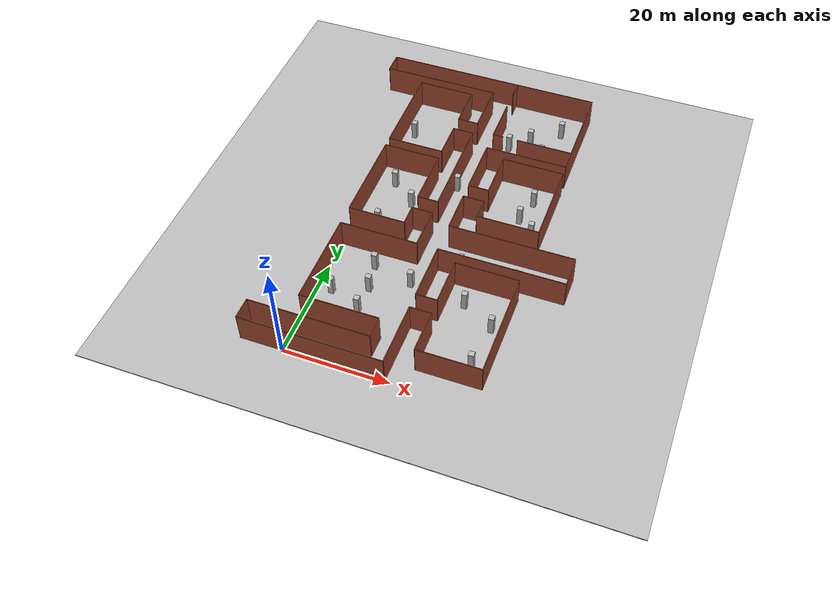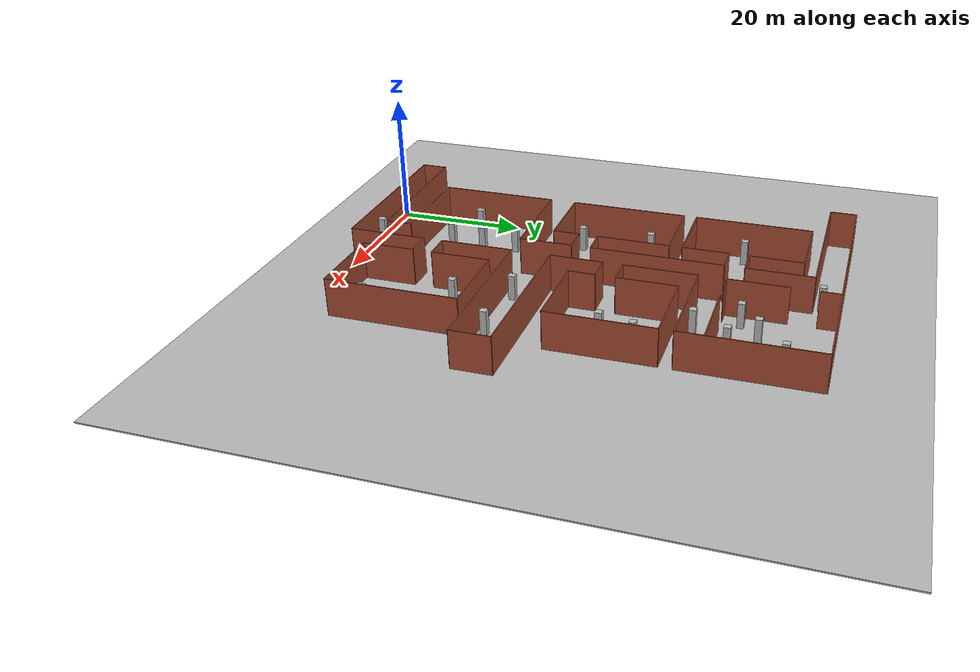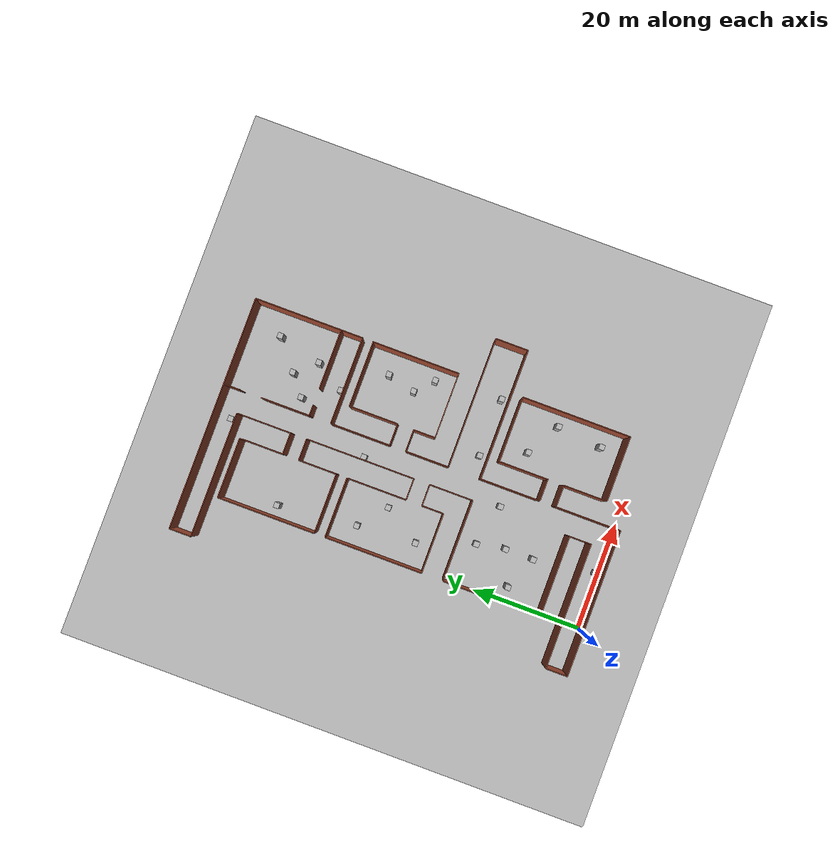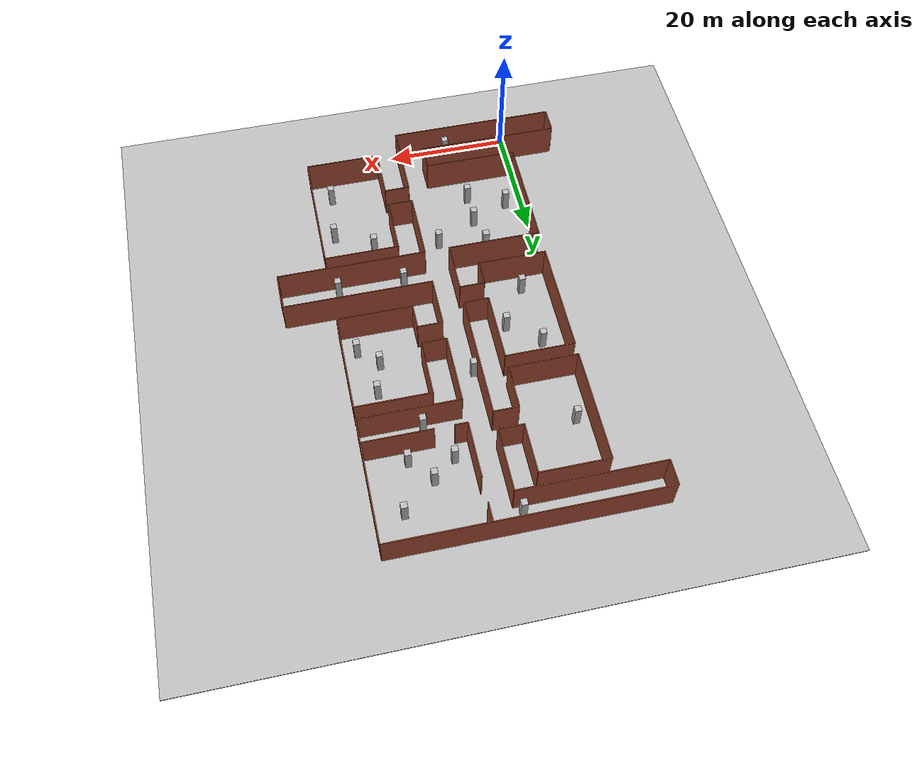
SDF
<sdf version="1.6">
 <world name="default">
  <light name="sun" type="directional">
   <pose>0 0 10 0 -0 0</pose>
   <diffuse>0.8 0.8 0.8 1</diffuse>
   <specular>0.2 0.2 0.2 1</specular>
   <attenuation>
    <range>1000</range>
    <constant>0.9</constant>
    <linear>0.01</linear>
    <quadratic>0.001</quadratic>
   </attenuation>
   <direction>-0.5 0.1 -0.9</direction>
   <spot><inner_angle>0</inner_angle><outer_angle>0</outer_angle><falloff>0</falloff></spot>
  </light>
  <spherical_coordinates>
   <surface_model>EARTH_WGS84</surface_model>
   <latitude_deg>0</latitude_deg>
   <longitude_deg>0</longitude_deg>
   <elevation>0</elevation>
   <heading_deg>0</heading_deg>
  </spherical_coordinates>
  <physics name="default_physics" default="0" type="ode">
   <ode>
    <solver>
     <type>quick</type>
     <iters>1000</iters>
     <sor>1.3</sor>
     <use_dynamic_moi_rescaling>0</use_dynamic_moi_rescaling>
    </solver>
    <constraints>
     <cfm>0</cfm>
     <erp>0.2</erp>
     <contact_max_correcting_vel>100</contact_max_correcting_vel>
     <contact_surface_layer>0.001</contact_surface_layer>
    </constraints>
   </ode>
   <max_step_size>0.01</max_step_size>
   <real_time_factor>1</real_time_factor>
   <real_time_update_rate>100</real_time_update_rate>
  </physics>
  <gravity>0 0 -9.8</gravity>
  <magnetic_field>6e-06 2.3e-05 -4.2e-05</magnetic_field>
  <atmosphere type="adiabatic"/>
  <scene><ambient>0.4 0.4 0.4 1</ambient><background>0.7 0.7 0.7 1</background><shadows>1</shadows></scene>
  <model name="HZI_Ground">
   <static>1</static>
   <link name="link">
    <collision name="collision"><geometry><box><size>100 100 0.2</size></box></geometry></collision>
    <visual name="visual">
     <cast_shadows>0</cast_shadows>
     <geometry><box><size>100 100 0.2</size></box></geometry>
     <material>
      <script>
       <uri>model://HZI_Ground/materials/scripts</uri>
       <uri>model://HZI_Ground/materials/textures</uri>
       <name>vrc/ground</name>
      </script>
     </material>
    </visual>
   </link>
   <pose>17 37 0 0 -0 0</pose>
  </model>
  <model name="HZI">
   <link name="Wall_0">
    <collision name="Wall_0_Collision">
     <pose>13.5 0 3 0 -0 0</pose>
     <geometry><box><size>27 0.15 6</size></box></geometry>
    </collision>
    <visual name="Wall_0_Visual">
     <pose>13.5 0 3 0 -0 0</pose>
     <geometry><box><size>27 0.15 6</size></box></geometry>
     <material>
      <script><uri>file://media/materials/scripts/gazebo.material</uri><name>Gazebo/Bricks</name></script>
      <ambient>1 1 1 1</ambient>
     </material>
     <meta><layer>0</layer></meta>
    </visual>
    <pose>-8 0 0 0 -0 0</pose>
   </link>
   <link name="Wall_1">
    <collision name="Wall_1_Collision">
     <pose>6 0 3 0 -0 0</pose>
     <geometry><box><size>12 0.15 6</size></box></geometry>
    </collision>
    <visual name="Wall_1_Visual">
     <pose>6 0 3 0 -0 0</pose>
     <geometry><box><size>12 0.15 6</size></box></geometry>
     <material>
      <script><uri>file://media/materials/scripts/gazebo.material</uri><name>Gazebo/Bricks</name></script>
      <ambient>1 1 1 1</ambient>
     </material>
     <meta><layer>0</layer></meta>
    </visual>
    <pose>19 0 0 0 -0 1.5708</pose>
   </link>
   <link name="Wall_2">
    <collision name="Wall_2_Collision">
     <pose>2 0 3 0 -0 0</pose>
     <geometry><box><size>4 0.15 6</size></box></geometry>
    </collision>
    <visual name="Wall_2_Visual">
     <pose>2 0 3 0 -0 0</pose>
     <geometry><box><size>4 0.15 6</size></box></geometry>
     <material>
      <script><uri>file://media/materials/scripts/gazebo.material</uri><name>Gazebo/Bricks</name></script>
      <ambient>1 1 1 1</ambient>
     </material>
     <meta><layer>0</layer></meta>
    </visual>
    <pose>19 12 0 0 -0 0</pose>
   </link>
   <link name="Wall_3">
    <collision name="Wall_3_Collision">
     <pose>4 0 3 0 -0 0</pose>
     <geometry><box><size>8 0.15 6</size></box></geometry>
    </collision>
    <visual name="Wall_3_Visual">
     <pose>4 0 3 0 -0 0</pose>
     <geometry><box><size>8 0.15 6</size></box></geometry>
     <material>
      <script><uri>file://media/materials/scripts/gazebo.material</uri><name>Gazebo/Bricks</name></script>
      <ambient>1 1 1 1</ambient>
     </material>
     <meta><layer>0</layer></meta>
    </visual>
    <pose>23 4 0 0 -0 1.5708</pose>
   </link>
   <link name="Wall_4">
    <collision name="Wall_4_Collision">
     <pose>6 0 3 0 -0 0</pose>
     <geometry><box><size>12 0.15 6</size></box></geometry>
    </collision>
    <visual name="Wall_4_Visual">
     <pose>6 0 3 0 -0 0</pose>
     <geometry><box><size>12 0.15 6</size></box></geometry>
     <material>
      <script><uri>file://media/materials/scripts/gazebo.material</uri><name>Gazebo/Bricks</name></script>
      <ambient>1 1 1 1</ambient>
     </material>
     <meta><layer>0</layer></meta>
    </visual>
    <pose>23 4 0 0 -0 0</pose>
   </link>
   <link name="Wall_5">
    <collision name="Wall_5_Collision">
     <pose>10 0 3 0 -0 0</pose>
     <geometry><box><size>20 0.15 6</size></box></geometry>
    </collision>
    <visual name="Wall_5_Visual">
     <pose>10 0 3 0 -0 0</pose>
     <geometry><box><size>20 0.15 6</size></box></geometry>
     <material>
      <script><uri>file://media/materials/scripts/gazebo.material</uri><name>Gazebo/Bricks</name></script>
      <ambient>1 1 1 1</ambient>
     </material>
     <meta><layer>0</layer></meta>
    </visual>
    <pose>35 4 0 0 -0 1.5708</pose>
   </link>
   <link name="Wall_6">
    <collision name="Wall_6_Collision">
     <pose>6 0 3 0 -0 0</pose>
     <geometry><box><size>12 0.15 6</size></box></geometry>
    </collision>
    <visual name="Wall_6_Visual">
     <pose>6 0 3 0 -0 0</pose>
     <geometry><box><size>12 0.15 6</size></box></geometry>
     <material>
      <script><uri>file://media/materials/scripts/gazebo.material</uri><name>Gazebo/Bricks</name></script>
      <ambient>1 1 1 1</ambient>
     </material>
     <meta><layer>0</layer></meta>
    </visual>
    <pose>23 24 0 0 -0 0</pose>
   </link>
   <link name="Wall_7">
    <collision name="Wall_7_Collision">
     <pose>4.5 0 3 0 -0 0</pose>
     <geometry><box><size>9 0.15 6</size></box></geometry>
    </collision>
    <visual name="Wall_7_Visual">
     <pose>4.5 0 3 0 -0 0</pose>
     <geometry><box><size>9 0.15 6</size></box></geometry>
     <material>
      <script><uri>file://media/materials/scripts/gazebo.material</uri><name>Gazebo/Bricks</name></script>
      <ambient>1 1 1 1</ambient>
     </material>
     <meta><layer>0</layer></meta>
    </visual>
    <pose>23 15 0 0 -0 1.5708</pose>
   </link>
   <link name="Wall_8">
    <collision name="Wall_8_Collision">
     <pose>2 0 3 0 -0 0</pose>
     <geometry><box><size>4 0.15 6</size></box></geometry>
    </collision>
    <visual name="Wall_8_Visual">
     <pose>2 0 3 0 -0 0</pose>
     <geometry><box><size>4 0.15 6</size></box></geometry>
     <material>
      <script><uri>file://media/materials/scripts/gazebo.material</uri><name>Gazebo/Bricks</name></script>
      <ambient>1 1 1 1</ambient>
     </material>
     <meta><layer>0</layer></meta>
    </visual>
    <pose>19 15 0 0 -0 0</pose>
   </link>
   <link name="Wall_9">
    <collision name="Wall_9_Collision">
     <pose>5.5 0 3 0 -0 0</pose>
     <geometry><box><size>11 0.15 6</size></box></geometry>
    </collision>
    <visual name="Wall_9_Visual">
     <pose>5.5 0 3 0 -0 0</pose>
     <geometry><box><size>11 0.15 6</size></box></geometry>
     <material>
      <script><uri>file://media/materials/scripts/gazebo.material</uri><name>Gazebo/Bricks</name></script>
      <ambient>1 1 1 1</ambient>
     </material>
     <meta><layer>0</layer></meta>
    </visual>
    <pose>19 15 0 0 -0 1.5708</pose>
   </link>
   <link name="Wall_10">
    <collision name="Wall_10_Collision">
     <pose>12 0 3 0 -0 0</pose>
     <geometry><box><size>24 0.15 6</size></box></geometry>
    </collision>
    <visual name="Wall_10_Visual">
     <pose>12 0 3 0 -0 0</pose>
     <geometry><box><size>24 0.15 6</size></box></geometry>
     <material>
      <script><uri>file://media/materials/scripts/gazebo.material</uri><name>Gazebo/Bricks</name></script>
      <ambient>1 1 1 1</ambient>
     </material>
     <meta><layer>0</layer></meta>
    </visual>
    <pose>19 26 0 0 -0 0</pose>
   </link>
   <link name="Wall_11">
    <collision name="Wall_11_Collision">
     <pose>3 0 3 0 -0 0</pose>
     <geometry><box><size>6 0.15 6</size></box></geometry>
    </collision>
    <visual name="Wall_11_Visual">
     <pose>3 0 3 0 -0 0</pose>
     <geometry><box><size>6 0.15 6</size></box></geometry>
     <material>
      <script><uri>file://media/materials/scripts/gazebo.material</uri><name>Gazebo/Bricks</name></script>
      <ambient>1 1 1 1</ambient>
     </material>
     <meta><layer>0</layer></meta>
    </visual>
    <pose>43 26 0 0 -0 1.5708</pose>
   </link>
   <link name="Wall_12">
    <collision name="Wall_12_Collision">
     <pose>12 0 3 0 -0 0</pose>
     <geometry><box><size>24 0.15 6</size></box></geometry>
    </collision>
    <visual name="Wall_12_Visual">
     <pose>12 0 3 0 -0 0</pose>
     <geometry><box><size>24 0.15 6</size></box></geometry>
     <material>
      <script><uri>file://media/materials/scripts/gazebo.material</uri><name>Gazebo/Bricks</name></script>
      <ambient>1 1 1 1</ambient>
     </material>
     <meta><layer>0</layer></meta>
    </visual>
    <pose>19 32 0 0 -0 0</pose>
   </link>
   <link name="Wall_13">
    <collision name="Wall_13_Collision">
     <pose>11.5 0 3 0 -0 0</pose>
     <geometry><box><size>23 0.15 6</size></box></geometry>
    </collision>
    <visual name="Wall_13_Visual">
     <pose>11.5 0 3 0 -0 0</pose>
     <geometry><box><size>23 0.15 6</size></box></geometry>
     <material>
      <script><uri>file://media/materials/scripts/gazebo.material</uri><name>Gazebo/Bricks</name></script>
      <ambient>1 1 1 1</ambient>
     </material>
     <meta><layer>0</layer></meta>
    </visual>
    <pose>-8 4 0 0 -0 0</pose>
   </link>
   <link name="Wall_14">
    <collision name="Wall_14_Collision">
     <pose>2 0 3 0 -0 0</pose>
     <geometry><box><size>4 0.15 6</size></box></geometry>
    </collision>
    <visual name="Wall_14_Visual">
     <pose>2 0 3 0 -0 0</pose>
     <geometry><box><size>4 0.15 6</size></box></geometry>
     <material>
      <script><uri>file://media/materials/scripts/gazebo.material</uri><name>Gazebo/Bricks</name></script>
      <ambient>1 1 1 1</ambient>
     </material>
     <meta><layer>0</layer></meta>
    </visual>
    <pose>15 4 0 0 -0 1.5708</pose>
   </link>
   <link name="Wall_15">
    <collision name="Wall_15_Collision">
     <pose>7.5 0 3 0 -0 0</pose>
     <geometry><box><size>15 0.15 6</size></box></geometry>
    </collision>
    <visual name="Wall_15_Visual">
     <pose>7.5 0 3 0 -0 0</pose>
     <geometry><box><size>15 0.15 6</size></box></geometry>
     <material>
      <script><uri>file://media/materials/scripts/gazebo.material</uri><name>Gazebo/Bricks</name></script>
      <ambient>1 1 1 1</ambient>
     </material>
     <meta><layer>0</layer></meta>
    </visual>
    <pose>0 8 0 0 -0 0</pose>
   </link>
   <link name="Wall_16">
    <collision name="Wall_16_Collision">
     <pose>2 0 3 0 -0 0</pose>
     <geometry><box><size>4 0.15 6</size></box></geometry>
    </collision>
    <visual name="Wall_16_Visual">
     <pose>2 0 3 0 -0 0</pose>
     <geometry><box><size>4 0.15 6</size></box></geometry>
     <material>
      <script><uri>file://media/materials/scripts/gazebo.material</uri><name>Gazebo/Bricks</name></script>
      <ambient>1 1 1 1</ambient>
     </material>
     <meta><layer>0</layer></meta>
    </visual>
    <pose>-8 0 0 0 -0 1.5708</pose>
   </link>
   <link name="Wall_17">
    <collision name="Wall_17_Collision">
     <pose>7.5 0 3 0 -0 0</pose>
     <geometry><box><size>15 0.15 6</size></box></geometry>
    </collision>
    <visual name="Wall_17_Visual">
     <pose>7.5 0 3 0 -0 0</pose>
     <geometry><box><size>15 0.15 6</size></box></geometry>
     <material>
      <script><uri>file://media/materials/scripts/gazebo.material</uri><name>Gazebo/Bricks</name></script>
      <ambient>1 1 1 1</ambient>
     </material>
     <meta><layer>0</layer></meta>
    </visual>
    <pose>0 26 0 0 -0 0</pose>
   </link>
   <link name="Wall_18">
    <collision name="Wall_18_Collision">
     <pose>9 0 3 0 -0 0</pose>
     <geometry><box><size>18 0.15 6</size></box></geometry>
    </collision>
    <visual name="Wall_18_Visual">
     <pose>9 0 3 0 -0 0</pose>
     <geometry><box><size>18 0.15 6</size></box></geometry>
     <material>
      <script><uri>file://media/materials/scripts/gazebo.material</uri><name>Gazebo/Bricks</name></script>
      <ambient>1 1 1 1</ambient>
     </material>
     <meta><layer>0</layer></meta>
    </visual>
    <pose>0 8 0 0 -0 1.5708</pose>
   </link>
   <link name="Wall_19">
    <collision name="Wall_19_Collision">
     <pose>5.5 0 3 0 -0 0</pose>
     <geometry><box><size>11 0.15 6</size></box></geometry>
    </collision>
    <visual name="Wall_19_Visual">
     <pose>5.5 0 3 0 -0 0</pose>
     <geometry><box><size>11 0.15 6</size></box></geometry>
     <material>
      <script><uri>file://media/materials/scripts/gazebo.material</uri><name>Gazebo/Bricks</name></script>
      <ambient>1 1 1 1</ambient>
     </material>
     <meta><layer>0</layer></meta>
    </visual>
    <pose>0 30 0 0 -0 0</pose>
   </link>
   <link name="Wall_20">
    <collision name="Wall_20_Collision">
     <pose>2 0 3 0 -0 0</pose>
     <geometry><box><size>4 0.15 6</size></box></geometry>
    </collision>
    <visual name="Wall_20_Visual">
     <pose>2 0 3 0 -0 0</pose>
     <geometry><box><size>4 0.15 6</size></box></geometry>
     <material>
      <script><uri>file://media/materials/scripts/gazebo.material</uri><name>Gazebo/Bricks</name></script>
      <ambient>1 1 1 1</ambient>
     </material>
     <meta><layer>0</layer></meta>
    </visual>
    <pose>11 30 0 0 -0 1.5708</pose>
   </link>
   <link name="Wall_21">
    <collision name="Wall_21_Collision">
     <pose>2 0 3 0 -0 0</pose>
     <geometry><box><size>4 0.15 6</size></box></geometry>
    </collision>
    <visual name="Wall_21_Visual">
     <pose>2 0 3 0 -0 0</pose>
     <geometry><box><size>4 0.15 6</size></box></geometry>
     <material>
      <script><uri>file://media/materials/scripts/gazebo.material</uri><name>Gazebo/Bricks</name></script>
      <ambient>1 1 1 1</ambient>
     </material>
     <meta><layer>0</layer></meta>
    </visual>
    <pose>11 34 0 0 -0 0</pose>
   </link>
   <link name="Wall_22">
    <collision name="Wall_22_Collision">
     <pose>4 0 3 0 -0 0</pose>
     <geometry><box><size>8 0.15 6</size></box></geometry>
    </collision>
    <visual name="Wall_22_Visual">
     <pose>4 0 3 0 -0 0</pose>
     <geometry><box><size>8 0.15 6</size></box></geometry>
     <material>
      <script><uri>file://media/materials/scripts/gazebo.material</uri><name>Gazebo/Bricks</name></script>
      <ambient>1 1 1 1</ambient>
     </material>
     <meta><layer>0</layer></meta>
    </visual>
    <pose>15 26 0 0 -0 1.5708</pose>
   </link>
   <link name="Wall_23">
    <collision name="Wall_23_Collision">
     <pose>9 0 3 0 -0 0</pose>
     <geometry><box><size>18 0.15 6</size></box></geometry>
    </collision>
    <visual name="Wall_23_Visual">
     <pose>9 0 3 0 -0 0</pose>
     <geometry><box><size>18 0.15 6</size></box></geometry>
     <material>
      <script><uri>file://media/materials/scripts/gazebo.material</uri><name>Gazebo/Bricks</name></script>
      <ambient>1 1 1 1</ambient>
     </material>
     <meta><layer>0</layer></meta>
    </visual>
    <pose>0 30 0 0 -0 1.5708</pose>
   </link>
   <link name="Wall_24">
    <collision name="Wall_24_Collision">
     <pose>5.5 0 3 0 -0 0</pose>
     <geometry><box><size>11 0.15 6</size></box></geometry>
    </collision>
    <visual name="Wall_21_Visual">
     <pose>5.5 0 3 0 -0 0</pose>
     <geometry><box><size>11 0.15 6</size></box></geometry>
     <material>
      <script><uri>file://media/materials/scripts/gazebo.material</uri><name>Gazebo/Bricks</name></script>
      <ambient>1 1 1 1</ambient>
     </material>
     <meta><layer>0</layer></meta>
    </visual>
    <pose>0 48 0 0 -0 0</pose>
   </link>
   <link name="Wall_25">
    <collision name="Wall_25_Collision">
     <pose>5.5 0 3 0 -0 0</pose>
     <geometry><box><size>11 0.15 6</size></box></geometry>
    </collision>
    <visual name="Wall_25_Visual">
     <pose>5.5 0 3 0 -0 0</pose>
     <geometry><box><size>11 0.15 6</size></box></geometry>
     <material>
      <script><uri>file://media/materials/scripts/gazebo.material</uri><name>Gazebo/Bricks</name></script>
      <ambient>1 1 1 1</ambient>
     </material>
     <meta><layer>0</layer></meta>
    </visual>
    <pose>11 37 0 0 -0 1.5708</pose>
   </link>
   <link name="Wall_26">
    <collision name="Wall_26_Collision">
     <pose>2 0 3 0 -0 0</pose>
     <geometry><box><size>4 0.15 6</size></box></geometry>
    </collision>
    <visual name="Wall_26_Visual">
     <pose>2 0 3 0 -0 0</pose>
     <geometry><box><size>4 0.15 6</size></box></geometry>
     <material>
      <script><uri>file://media/materials/scripts/gazebo.material</uri><name>Gazebo/Bricks</name></script>
      <ambient>1 1 1 1</ambient>
     </material>
     <meta><layer>0</layer></meta>
    </visual>
    <pose>11 37 0 0 -0 0</pose>
   </link>
   <link name="Wall_27">
    <collision name="Wall_27_Collision">
     <pose>10 0 3 0 -0 0</pose>
     <geometry><box><size>20 0.15 6</size></box></geometry>
    </collision>
    <visual name="Wall_27_Visual">
     <pose>10 0 3 0 -0 0</pose>
     <geometry><box><size>20 0.15 6</size></box></geometry>
     <material>
      <script><uri>file://media/materials/scripts/gazebo.material</uri><name>Gazebo/Bricks</name></script>
      <ambient>1 1 1 1</ambient>
     </material>
     <meta><layer>0</layer></meta>
    </visual>
    <pose>15 37 0 0 -0 1.5708</pose>
   </link>
   <link name="Wall_28">
    <collision name="Wall_28_Collision">
     <pose>11.5 0 3 0 -0 0</pose>
     <geometry><box><size>23 0.15 6</size></box></geometry>
    </collision>
    <visual name="Wall_28_Visual">
     <pose>11.5 0 3 0 -0 0</pose>
     <geometry><box><size>23 0.15 6</size></box></geometry>
     <material>
      <script><uri>file://media/materials/scripts/gazebo.material</uri><name>Gazebo/Bricks</name></script>
      <ambient>1 1 1 1</ambient>
     </material>
     <meta><layer>0</layer></meta>
    </visual>
    <pose>-8 70 0 0 -0 0</pose>
   </link>
   <link name="Wall_29">
    <collision name="Wall_29_Collision">
     <pose>2 0 3 0 -0 0</pose>
     <geometry><box><size>4 0.15 6</size></box></geometry>
    </collision>
    <visual name="Wall_29_Visual">
     <pose>2 0 3 0 -0 0</pose>
     <geometry><box><size>4 0.15 6</size></box></geometry>
     <material>
      <script><uri>file://media/materials/scripts/gazebo.material</uri><name>Gazebo/Bricks</name></script>
      <ambient>1 1 1 1</ambient>
     </material>
     <meta><layer>0</layer></meta>
    </visual>
    <pose>-8 70 0 0 -0 1.5708</pose>
   </link>
   <link name="Wall_30">
    <collision name="Wall_30_Collision">
     <pose>21.5 0 3 0 -0 0</pose>
     <geometry><box><size>43 0.15 6</size></box></geometry>
    </collision>
    <visual name="Wall_30_Visual">
     <pose>21.5 0 3 0 -0 0</pose>
     <geometry><box><size>43 0.15 6</size></box></geometry>
     <material>
      <script><uri>file://media/materials/scripts/gazebo.material</uri><name>Gazebo/Bricks</name></script>
      <ambient>1 1 1 1</ambient>
     </material>
     <meta><layer>0</layer></meta>
    </visual>
    <pose>-8 74 0 0 -0 0</pose>
   </link>
   <link name="Wall_31">
    <collision name="Wall_31_Collision">
     <pose>4 0 3 0 -0 0</pose>
     <geometry><box><size>8 0.15 6</size></box></geometry>
    </collision>
    <visual name="Wall_31_Visual">
     <pose>4 0 3 0 -0 0</pose>
     <geometry><box><size>8 0.15 6</size></box></geometry>
     <material>
      <script><uri>file://media/materials/scripts/gazebo.material</uri><name>Gazebo/Bricks</name></script>
      <ambient>1 1 1 1</ambient>
     </material>
     <meta><layer>0</layer></meta>
    </visual>
    <pose>19 32 0 0 -0 1.5708</pose>
   </link>
   <link name="Wall_32">
    <collision name="Wall_32_Collision">
     <pose>2 0 3 0 -0 0</pose>
     <geometry><box><size>4 0.15 6</size></box></geometry>
    </collision>
    <visual name="Wall_32_Visual">
     <pose>2 0 3 0 -0 0</pose>
     <geometry><box><size>4 0.15 6</size></box></geometry>
     <material>
      <script><uri>file://media/materials/scripts/gazebo.material</uri><name>Gazebo/Bricks</name></script>
      <ambient>1 1 1 1</ambient>
     </material>
     <meta><layer>0</layer></meta>
    </visual>
    <pose>19 40 0 0 -0 0</pose>
   </link>
   <link name="Wall_33">
    <collision name="Wall_33_Collision">
     <pose>2 0 3 0 -0 0</pose>
     <geometry><box><size>4 0.15 6</size></box></geometry>
    </collision>
    <visual name="Wall_33_Visual">
     <pose>2 0 3 0 -0 0</pose>
     <geometry><box><size>4 0.15 6</size></box></geometry>
     <material>
      <script><uri>file://media/materials/scripts/gazebo.material</uri><name>Gazebo/Bricks</name></script>
      <ambient>1 1 1 1</ambient>
     </material>
     <meta><layer>0</layer></meta>
    </visual>
    <pose>23 36 0 0 -0 1.5708</pose>
   </link>
   <link name="Wall_34">
    <collision name="Wall_34_Collision">
     <pose>6 0 3 0 -0 0</pose>
     <geometry><box><size>12 0.15 6</size></box></geometry>
    </collision>
    <visual name="Wall_34_Visual">
     <pose>6 0 3 0 -0 0</pose>
     <geometry><box><size>12 0.15 6</size></box></geometry>
     <material>
      <script><uri>file://media/materials/scripts/gazebo.material</uri><name>Gazebo/Bricks</name></script>
      <ambient>1 1 1 1</ambient>
     </material>
     <meta><layer>0</layer></meta>
    </visual>
    <pose>23 36 0 0 -0 0</pose>
   </link>
   <link name="Wall_35">
    <collision name="Wall_35_Collision">
     <pose>2 0 3 0 -0 0</pose>
     <geometry><box><size>4 0.15 6</size></box></geometry>
    </collision>
    <visual name="Wall_35_Visual">
     <pose>2 0 3 0 -0 0</pose>
     <geometry><box><size>4 0.15 6</size></box></geometry>
     <material>
      <script><uri>file://media/materials/scripts/gazebo.material</uri><name>Gazebo/Bricks</name></script>
      <ambient>1 1 1 1</ambient>
     </material>
     <meta><layer>0</layer></meta>
    </visual>
    <pose>19 43 0 0 -0 0</pose>
   </link>
   <link name="Wall_36">
    <collision name="Wall_36_Collision">
     <pose>8 0 3 0 -0 0</pose>
     <geometry><box><size>16 0.15 6</size></box></geometry>
    </collision>
    <visual name="Wall_36_Visual">
     <pose>8 0 3 0 -0 0</pose>
     <geometry><box><size>16 0.15 6</size></box></geometry>
     <material>
      <script><uri>file://media/materials/scripts/gazebo.material</uri><name>Gazebo/Bricks</name></script>
      <ambient>1 1 1 1</ambient>
     </material>
     <meta><layer>0</layer></meta>
    </visual>
    <pose>35 36 0 0 -0 1.5708</pose>
   </link>
   <link name="Wall_37">
    <collision name="Wall_37_Collision">
     <pose>6 0 3 0 -0 0</pose>
     <geometry><box><size>12 0.15 6</size></box></geometry>
    </collision>
    <visual name="Wall_37_Visual">
     <pose>6 0 3 0 -0 0</pose>
     <geometry><box><size>12 0.15 6</size></box></geometry>
     <material>
      <script><uri>file://media/materials/scripts/gazebo.material</uri><name>Gazebo/Bricks</name></script>
      <ambient>1 1 1 1</ambient>
     </material>
     <meta><layer>0</layer></meta>
    </visual>
    <pose>23 52 0 0 -0 0</pose>
   </link>
   <link name="Wall_38">
    <collision name="Wall_38_Collision">
     <pose>4.5 0 3 0 -0 0</pose>
     <geometry><box><size>9 0.15 6</size></box></geometry>
    </collision>
    <visual name="Wall_38_Visual">
     <pose>4.5 0 3 0 -0 0</pose>
     <geometry><box><size>9 0.15 6</size></box></geometry>
     <material>
      <script><uri>file://media/materials/scripts/gazebo.material</uri><name>Gazebo/Bricks</name></script>
      <ambient>1 1 1 1</ambient>
     </material>
     <meta><layer>0</layer></meta>
    </visual>
    <pose>23 43 0 0 -0 1.5708</pose>
   </link>
   <link name="Wall_39">
    <collision name="Wall_39_Collision">
     <pose>5.5 0 3 0 -0 0</pose>
     <geometry><box><size>11 0.15 6</size></box></geometry>
    </collision>
    <visual name="Wall_39_Visual">
     <pose>5.5 0 3 0 -0 0</pose>
     <geometry><box><size>11 0.15 6</size></box></geometry>
     <material>
      <script><uri>file://media/materials/scripts/gazebo.material</uri><name>Gazebo/Bricks</name></script>
      <ambient>1 1 1 1</ambient>
     </material>
     <meta><layer>0</layer></meta>
    </visual>
    <pose>19 43 0 0 -0 1.5708</pose>
   </link>
   <link name="Wall_40">
    <collision name="Wall_40_Collision">
     <pose>8 0 3 0 -0 0</pose>
     <geometry><box><size>16 0.15 6</size></box></geometry>
    </collision>
    <visual name="Wall_40_Visual">
     <pose>8 0 3 0 -0 0</pose>
     <geometry><box><size>16 0.15 6</size></box></geometry>
     <material>
      <script><uri>file://media/materials/scripts/gazebo.material</uri><name>Gazebo/Bricks</name></script>
      <ambient>1 1 1 1</ambient>
     </material>
     <meta><layer>0</layer></meta>
    </visual>
    <pose>19 54 0 0 -0 0</pose>
   </link>
   <link name="Wall_41">
    <collision name="Wall_41_Collision">
     <pose>10 0 3 0 -0 0</pose>
     <geometry><box><size>20 0.15 6</size></box></geometry>
    </collision>
    <visual name="Wall_41_Visual">
     <pose>10 0 3 0 -0 0</pose>
     <geometry><box><size>20 0.15 6</size></box></geometry>
     <material>
      <script><uri>file://media/materials/scripts/gazebo.material</uri><name>Gazebo/Bricks</name></script>
      <ambient>1 1 1 1</ambient>
     </material>
     <meta><layer>0</layer></meta>
    </visual>
    <pose>35 54 0 0 -0 1.5708</pose>
   </link>
   <link name="Wall_42">
    <collision name="Wall_42_Collision">
     <pose>1 0 3 0 -0 0</pose>
     <geometry><box><size>2 0.15 6</size></box></geometry>
    </collision>
    <visual name="Wall_42_Visual">
     <pose>1 0 3 0 -0 0</pose>
     <geometry><box><size>2 0.15 6</size></box></geometry>
     <material>
      <script><uri>file://media/materials/scripts/gazebo.material</uri><name>Gazebo/Bricks</name></script>
      <ambient>1 1 1 1</ambient>
     </material>
     <meta><layer>0</layer></meta>
    </visual>
    <pose>19 58 0 0 -0 0</pose>
   </link>
   <link name="Wall_43">
    <collision name="Wall_43_Collision">
     <pose>5.5 0 3 0 -0 0</pose>
     <geometry><box><size>11 0.15 6</size></box></geometry>
    </collision>
    <visual name="Wall_43_Visual">
     <pose>5.5 0 3 0 -0 0</pose>
     <geometry><box><size>11 0.15 6</size></box></geometry>
     <material>
      <script><uri>file://media/materials/scripts/gazebo.material</uri><name>Gazebo/Bricks</name></script>
      <ambient>1 1 1 1</ambient>
     </material>
     <meta><layer>0</layer></meta>
    </visual>
    <pose>24 58 0 0 -0 0</pose>
   </link>
   <link name="Wall_44">
    <collision name="Wall_44_Collision">
     <pose>4.5 0 3 0 -0 0</pose>
     <geometry><box><size>9 0.15 6</size></box></geometry>
    </collision>
    <visual name="Wall_44_Visual">
     <pose>4.5 0 3 0 -0 0</pose>
     <geometry><box><size>9 0.15 6</size></box></geometry>
     <material>
      <script><uri>file://media/materials/scripts/gazebo.material</uri><name>Gazebo/Bricks</name></script>
      <ambient>1 1 1 1</ambient>
     </material>
     <meta><layer>0</layer></meta>
    </visual>
    <pose>19 58 0 0 -0 1.5708</pose>
   </link>
   <link name="Wall_45">
    <collision name="Wall_45_Collision">
     <pose>1.5 0 3 0 -0 0</pose>
     <geometry><box><size>3 0.15 6</size></box></geometry>
    </collision>
    <visual name="Wall_45_Visual">
     <pose>1.5 0 3 0 -0 0</pose>
     <geometry><box><size>3 0.15 6</size></box></geometry>
     <material>
      <script><uri>file://media/materials/scripts/gazebo.material</uri><name>Gazebo/Bricks</name></script>
      <ambient>1 1 1 1</ambient>
     </material>
     <meta><layer>0</layer></meta>
    </visual>
    <pose>19 71 0 0 -0 1.5708</pose>
   </link>
   <link name="Wall_46">
    <collision name="Wall_46_Collision">
     <pose>5 0 3 0 -0 0</pose>
     <geometry><box><size>10 0.15 6</size></box></geometry>
    </collision>
    <visual name="Wall_46_Visual">
     <pose>5 0 3 0 -0 0</pose>
     <geometry><box><size>10 0.15 6</size></box></geometry>
     <material>
      <script><uri>file://media/materials/scripts/gazebo.material</uri><name>Gazebo/Bricks</name></script>
      <ambient>1 1 1 1</ambient>
     </material>
     <meta><layer>0</layer></meta>
    </visual>
    <pose>15 60 0 0 -0 1.5708</pose>
   </link>
   <link name="Wall_47">
    <collision name="Wall_47_Collision">
     <pose>9 0 3 0 -0 0</pose>
     <geometry><box><size>18 0.15 6</size></box></geometry>
    </collision>
    <visual name="Wall_47_Visual">
     <pose>9 0 3 0 -0 0</pose>
     <geometry><box><size>18 0.15 6</size></box></geometry>
     <material>
      <script><uri>file://media/materials/scripts/gazebo.material</uri><name>Gazebo/Bricks</name></script>
      <ambient>1 1 1 1</ambient>
     </material>
     <meta><layer>0</layer></meta>
    </visual>
    <pose>0 50 0 0 -0 1.5708</pose>
   </link>
   <link name="Wall_48">
    <collision name="Wall_48_Collision">
     <pose>3.5 0 3 0 -0 0</pose>
     <geometry><box><size>7 0.15 6</size></box></geometry>
    </collision>
    <visual name="Wall_48_Visual">
     <pose>3.5 0 3 0 -0 0</pose>
     <geometry><box><size>7 0.15 6</size></box></geometry>
     <material>
      <script><uri>file://media/materials/scripts/gazebo.material</uri><name>Gazebo/Bricks</name></script>
      <ambient>1 1 1 1</ambient>
     </material>
     <meta><layer>0</layer></meta>
    </visual>
    <pose>11 50 0 0 -0 1.5708</pose>
   </link>
   <link name="Wall_49">
    <collision name="Wall_49_Collision">
     <pose>4 0 3 0 -0 0</pose>
     <geometry><box><size>8 0.15 6</size></box></geometry>
    </collision>
    <visual name="Wall_49_Visual">
     <pose>4 0 3 0 -0 0</pose>
     <geometry><box><size>8 0.15 6</size></box></geometry>
     <material>
      <script><uri>file://media/materials/scripts/gazebo.material</uri><name>Gazebo/Bricks</name></script>
      <ambient>1 1 1 1</ambient>
     </material>
     <meta><layer>0</layer></meta>
    </visual>
    <pose>11 60 0 0 -0 1.5708</pose>
   </link>
   <link name="Wall_50">
    <collision name="Wall_50_Collision">
     <pose>5.5 0 3 0 -0 0</pose>
     <geometry><box><size>11 0.15 6</size></box></geometry>
    </collision>
    <visual name="Wall_50_Visual">
     <pose>5.5 0 3 0 -0 0</pose>
     <geometry><box><size>11 0.15 6</size></box></geometry>
     <material>
      <script><uri>file://media/materials/scripts/gazebo.material</uri><name>Gazebo/Bricks</name></script>
      <ambient>1 1 1 1</ambient>
     </material>
     <meta><layer>0</layer></meta>
    </visual>
    <pose>0 50 0 0 -0 0</pose>
   </link>
   <link name="Wall_51">
    <collision name="Wall_51_Collision">
     <pose>5.5 0 3 0 -0 0</pose>
     <geometry><box><size>11 0.15 6</size></box></geometry>
    </collision>
    <visual name="Wall_51_Visual">
     <pose>5.5 0 3 0 -0 0</pose>
     <geometry><box><size>11 0.15 6</size></box></geometry>
     <material>
      <script><uri>file://media/materials/scripts/gazebo.material</uri><name>Gazebo/Bricks</name></script>
      <ambient>1 1 1 1</ambient>
     </material>
     <meta><layer>0</layer></meta>
    </visual>
    <pose>0 68 0 0 -0 0</pose>
   </link>
   <link name="Wall_52">
    <collision name="Wall_52_Collision">
     <pose>2 0 3 0 -0 0</pose>
     <geometry><box><size>4 0.15 6</size></box></geometry>
    </collision>
    <visual name="Wall_52_Visual">
     <pose>2 0 3 0 -0 0</pose>
     <geometry><box><size>4 0.15 6</size></box></geometry>
     <material>
      <script><uri>file://media/materials/scripts/gazebo.material</uri><name>Gazebo/Bricks</name></script>
      <ambient>1 1 1 1</ambient>
     </material>
     <meta><layer>0</layer></meta>
    </visual>
    <pose>11 57 0 0 -0 0</pose>
   </link>
   <link name="Wall_53">
    <collision name="Wall_53_Collision">
     <pose>2 0 3 0 -0 0</pose>
     <geometry><box><size>4 0.15 6</size></box></geometry>
    </collision>
    <visual name="Wall_53_Visual">
     <pose>2 0 3 0 -0 0</pose>
     <geometry><box><size>4 0.15 6</size></box></geometry>
     <material>
      <script><uri>file://media/materials/scripts/gazebo.material</uri><name>Gazebo/Bricks</name></script>
      <ambient>1 1 1 1</ambient>
     </material>
     <meta><layer>0</layer></meta>
    </visual>
    <pose>11 60 0 0 -0 0</pose>
   </link>
   <static>1</static>
  </model>
  <model name="brick_box_1">
   <static>1</static>
   <link name="chassis">
    <pose>0 0 2 0 -0 0</pose>
    <collision name="collision"><geometry><box><size>1 1 4</size></box></geometry></collision>
    <visual name="visual">
     <geometry><mesh><uri>model://brick_box_1/meshes/simple_box.dae</uri><scale>1 1 4</scale></mesh></geometry>
     <material>
      <script>
       <uri>model://brick_box_1/materials/scripts</uri>
       <uri>model://brick_box_1/materials/textures</uri>
       <name>BrickBox/Diffuse</name>
      </script>
     </material>
    </visual>
   </link>
   <pose>2.79376 14.7912 0 0 -0 0</pose>
  </model>
  <model name="brick_box_3">
   <static>1</static>
   <link name="chassis">
    <pose>0 0 2 0 -0 0</pose>
    <collision name="collision"><geometry><box><size>1 1 4</size></box></geometry></collision>
    <visual name="visual">
     <geometry><mesh><uri>model://brick_box_3/meshes/simple_box.dae</uri><scale>1 1 4</scale></mesh></geometry>
     <material>
      <script>
       <uri>model://brick_box_3/materials/scripts</uri>
       <uri>model://brick_box_3/materials/textures</uri>
       <name>BrickBox/Sea</name>
      </script>
     </material>
    </visual>
   </link>
   <pose>8.96872 17.4544 0 0 -0 0</pose>
  </model>
  <model name="brick_box_1_0">
   <static>1</static>
   <link name="chassis">
    <pose>0 0 2 0 -0 0</pose>
    <collision name="collision"><geometry><box><size>1 1 4</size></box></geometry></collision>
    <visual name="visual">
     <geometry><mesh><uri>model://brick_box_1/meshes/simple_box.dae</uri><scale>1 1 4</scale></mesh></geometry>
     <material>
      <script>
       <uri>model://brick_box_1/materials/scripts</uri>
       <uri>model://brick_box_1/materials/textures</uri>
       <name>BrickBox/Diffuse</name>
      </script>
     </material>
    </visual>
   </link>
   <pose>8.02094 22.6281 0 0 -0 0</pose>
  </model>
  <model name="brick_box_2_0">
   <static>1</static>
   <link name="chassis">
    <pose>0 0 2 0 -0 0</pose>
    <collision name="collision"><geometry><box><size>1 1 4</size></box></geometry></collision>
    <visual name="visual">
     <geometry><mesh><uri>model://brick_box_2/meshes/simple_box.dae</uri><scale>1 1 4</scale></mesh></geometry>
     <material>
      <script>
       <uri>model://brick_box_2/materials/scripts</uri>
       <uri>model://brick_box_2/materials/textures</uri>
       <name>BrickBox/Flower</name>
      </script>
     </material>
    </visual>
   </link>
   <pose>8.92465 12.2622 0 0 -0 0</pose>
  </model>
  <model name="brick_box_1_1">
   <static>1</static>
   <link name="chassis">
    <pose>0 0 2 0 -0 0</pose>
    <collision name="collision"><geometry><box><size>1 1 4</size></box></geometry></collision>
    <visual name="visual">
     <geometry><mesh><uri>model://brick_box_1/meshes/simple_box.dae</uri><scale>1 1 4</scale></mesh></geometry>
     <material>
      <script>
       <uri>model://brick_box_1/materials/scripts</uri>
       <uri>model://brick_box_1/materials/textures</uri>
       <name>BrickBox/Diffuse</name>
      </script>
     </material>
    </visual>
   </link>
   <pose>10.4462 0.805102 0 0 -0 0</pose>
  </model>
  <model name="brick_box_2_2">
   <static>1</static>
   <link name="chassis">
    <pose>0 0 2 0 -0 0</pose>
    <collision name="collision"><geometry><box><size>1 1 4</size></box></geometry></collision>
    <visual name="visual">
     <geometry><mesh><uri>model://brick_box_2/meshes/simple_box.dae</uri><scale>1 1 4</scale></mesh></geometry>
     <material>
      <script>
       <uri>model://brick_box_2/materials/scripts</uri>
       <uri>model://brick_box_2/materials/textures</uri>
       <name>BrickBox/Flower</name>
      </script>
     </material>
    </visual>
   </link>
   <pose>26.4317 19.5875 0 0 -0 0</pose>
  </model>
  <model name="brick_box_3_2">
   <static>1</static>
   <link name="chassis">
    <pose>0 0 2 0 -0 0</pose>
    <collision name="collision"><geometry><box><size>1 1 4</size></box></geometry></collision>
    <visual name="visual">
     <geometry><mesh><uri>model://brick_box_3/meshes/simple_box.dae</uri><scale>1 1 4</scale></mesh></geometry>
     <material>
      <script>
       <uri>model://brick_box_3/materials/scripts</uri>
       <uri>model://brick_box_3/materials/textures</uri>
       <name>BrickBox/Sea</name>
      </script>
     </material>
    </visual>
   </link>
   <pose>31.7921 7.77596 0 0 -0 0</pose>
  </model>
  <model name="brick_box_2_3">
   <static>1</static>
   <link name="chassis">
    <pose>0 0 2 0 -0 0</pose>
    <collision name="collision"><geometry><box><size>1 1 4</size></box></geometry></collision>
    <visual name="visual">
     <geometry><mesh><uri>model://brick_box_2/meshes/simple_box.dae</uri><scale>1 1 4</scale></mesh></geometry>
     <material>
      <script>
       <uri>model://brick_box_2/materials/scripts</uri>
       <uri>model://brick_box_2/materials/textures</uri>
       <name>BrickBox/Flower</name>
      </script>
     </material>
    </visual>
   </link>
   <pose>32.5936 16.1053 0 0 -0 0</pose>
  </model>
  <model name="brick_box_2_5">
   <static>1</static>
   <link name="chassis">
    <pose>0 0 2 0 -0 0</pose>
    <collision name="collision"><geometry><box><size>1 1 4</size></box></geometry></collision>
    <visual name="visual">
     <geometry><mesh><uri>model://brick_box_2/meshes/simple_box.dae</uri><scale>1 1 4</scale></mesh></geometry>
     <material>
      <script>
       <uri>model://brick_box_2/materials/scripts</uri>
       <uri>model://brick_box_2/materials/textures</uri>
       <name>BrickBox/Flower</name>
      </script>
     </material>
    </visual>
   </link>
   <pose>33.6498 27.2757 0 0 -0 0</pose>
  </model>
  <model name="brick_box_1_3">
   <static>1</static>
   <link name="chassis">
    <pose>0 0 2 0 -0 0</pose>
    <collision name="collision"><geometry><box><size>1 1 4</size></box></geometry></collision>
    <visual name="visual">
     <geometry><mesh><uri>model://brick_box_1/meshes/simple_box.dae</uri><scale>1 1 4</scale></mesh></geometry>
     <material>
      <script>
       <uri>model://brick_box_1/materials/scripts</uri>
       <uri>model://brick_box_1/materials/textures</uri>
       <name>BrickBox/Diffuse</name>
      </script>
     </material>
    </visual>
   </link>
   <pose>22.9288 27.5022 0 0 -0 0</pose>
  </model>
  <model name="brick_box_1_4">
   <static>1</static>
   <link name="chassis">
    <pose>0 0 2 0 -0 0</pose>
    <collision name="collision"><geometry><box><size>1 1 4</size></box></geometry></collision>
    <visual name="visual">
     <geometry><mesh><uri>model://brick_box_1/meshes/simple_box.dae</uri><scale>1 1 4</scale></mesh></geometry>
     <material>
      <script>
       <uri>model://brick_box_1/materials/scripts</uri>
       <uri>model://brick_box_1/materials/textures</uri>
       <name>BrickBox/Diffuse</name>
      </script>
     </material>
    </visual>
   </link>
   <pose>4.43302 32.8017 0 0 -0 0</pose>
  </model>
  <model name="brick_box_2_7">
   <static>1</static>
   <link name="chassis">
    <pose>0 0 2 0 -0 0</pose>
    <collision name="collision"><geometry><box><size>1 1 4</size></box></geometry></collision>
    <visual name="visual">
     <geometry><mesh><uri>model://brick_box_2/meshes/simple_box.dae</uri><scale>1 1 4</scale></mesh></geometry>
     <material>
      <script>
       <uri>model://brick_box_2/materials/scripts</uri>
       <uri>model://brick_box_2/materials/textures</uri>
       <name>BrickBox/Flower</name>
      </script>
     </material>
    </visual>
   </link>
   <pose>8.63776 39.4899 0 0 -0 0</pose>
  </model>
  <model name="brick_box_3_4">
   <static>1</static>
   <link name="chassis">
    <pose>0 0 2 0 -0 0</pose>
    <collision name="collision"><geometry><box><size>1 1 4</size></box></geometry></collision>
    <visual name="visual">
     <geometry><mesh><uri>model://brick_box_3/meshes/simple_box.dae</uri><scale>1 1 4</scale></mesh></geometry>
     <material>
      <script>
       <uri>model://brick_box_3/materials/scripts</uri>
       <uri>model://brick_box_3/materials/textures</uri>
       <name>BrickBox/Sea</name>
      </script>
     </material>
    </visual>
   </link>
   <pose>3.71431 43.6012 0 0 -0 0</pose>
  </model>
  <model name="brick_box_2_9">
   <static>1</static>
   <link name="chassis">
    <pose>0 0 2 0 -0 0</pose>
    <collision name="collision"><geometry><box><size>1 1 4</size></box></geometry></collision>
    <visual name="visual">
     <geometry><mesh><uri>model://brick_box_2/meshes/simple_box.dae</uri><scale>1 1 4</scale></mesh></geometry>
     <material>
      <script>
       <uri>model://brick_box_2/materials/scripts</uri>
       <uri>model://brick_box_2/materials/textures</uri>
       <name>BrickBox/Flower</name>
      </script>
     </material>
    </visual>
   </link>
   <pose>15.7039 20.9201 0 0 -0 0</pose>
  </model>
  <model name="brick_box_2_10">
   <static>1</static>
   <link name="chassis">
    <pose>0 0 2 0 -0 0</pose>
    <collision name="collision"><geometry><box><size>1 1 4</size></box></geometry></collision>
    <visual name="visual">
     <geometry><mesh><uri>model://brick_box_2/meshes/simple_box.dae</uri><scale>1 1 4</scale></mesh></geometry>
     <material>
      <script>
       <uri>model://brick_box_2/materials/scripts</uri>
       <uri>model://brick_box_2/materials/textures</uri>
       <name>BrickBox/Flower</name>
      </script>
     </material>
    </visual>
   </link>
   <pose>15.5332 46.6506 -0.0149 0 -0 0</pose>
  </model>
  <model name="brick_box_2_11">
   <static>1</static>
   <link name="chassis">
    <pose>0 0 2 0 -0 0</pose>
    <collision name="collision"><geometry><box><size>1 1 4</size></box></geometry></collision>
    <visual name="visual">
     <geometry><mesh><uri>model://brick_box_2/meshes/simple_box.dae</uri><scale>1 1 4</scale></mesh></geometry>
     <material>
      <script>
       <uri>model://brick_box_2/materials/scripts</uri>
       <uri>model://brick_box_2/materials/textures</uri>
       <name>BrickBox/Flower</name>
      </script>
     </material>
    </visual>
   </link>
   <pose>30.8175 47.5557 0 0 -0 0</pose>
  </model>
  <model name="brick_box_2_12">
   <static>1</static>
   <link name="chassis">
    <pose>0 0 2 0 -0 0</pose>
    <collision name="collision"><geometry><box><size>1 1 4</size></box></geometry></collision>
    <visual name="visual">
     <geometry><mesh><uri>model://brick_box_2/meshes/simple_box.dae</uri><scale>1 1 4</scale></mesh></geometry>
     <material>
      <script>
       <uri>model://brick_box_2/materials/scripts</uri>
       <uri>model://brick_box_2/materials/textures</uri>
       <name>BrickBox/Flower</name>
      </script>
     </material>
    </visual>
   </link>
   <pose>32.6856 39.4971 0 0 -0 0</pose>
  </model>
  <model name="brick_box_1_6">
   <static>1</static>
   <link name="chassis">
    <pose>0 0 2 0 -0 0</pose>
    <collision name="collision"><geometry><box><size>1 1 4</size></box></geometry></collision>
    <visual name="visual">
     <geometry><mesh><uri>model://brick_box_1/meshes/simple_box.dae</uri><scale>1 1 4</scale></mesh></geometry>
     <material>
      <script>
       <uri>model://brick_box_1/materials/scripts</uri>
       <uri>model://brick_box_1/materials/textures</uri>
       <name>BrickBox/Diffuse</name>
      </script>
     </material>
    </visual>
   </link>
   <pose>29.5528 42.447 0 0 -0 0</pose>
  </model>
  <model name="brick_box_2_14">
   <static>1</static>
   <link name="chassis">
    <pose>0 0 2 0 -0 0</pose>
    <collision name="collision"><geometry><box><size>1 1 4</size></box></geometry></collision>
    <visual name="visual">
     <geometry><mesh><uri>model://brick_box_2/meshes/simple_box.dae</uri><scale>1 1 4</scale></mesh></geometry>
     <material>
      <script>
       <uri>model://brick_box_2/materials/scripts</uri>
       <uri>model://brick_box_2/materials/textures</uri>
       <name>BrickBox/Flower</name>
      </script>
     </material>
    </visual>
   </link>
   <pose>2.18589 58.1035 0 0 -0 0</pose>
  </model>
  <model name="brick_box_2_15">
   <static>1</static>
   <link name="chassis">
    <pose>0 0 2 0 -0 0</pose>
    <collision name="collision"><geometry><box><size>1 1 4</size></box></geometry></collision>
    <visual name="visual">
     <geometry><mesh><uri>model://brick_box_2/meshes/simple_box.dae</uri><scale>1 1 4</scale></mesh></geometry>
     <material>
      <script>
       <uri>model://brick_box_2/materials/scripts</uri>
       <uri>model://brick_box_2/materials/textures</uri>
       <name>BrickBox/Flower</name>
      </script>
     </material>
    </visual>
   </link>
   <pose>25.2552 63.7188 0 0 -0 0</pose>
  </model>
  <model name="brick_box_2_16">
   <static>1</static>
   <link name="chassis">
    <pose>0 0 2 0 -0 0</pose>
    <collision name="collision"><geometry><box><size>1 1 4</size></box></geometry></collision>
    <visual name="visual">
     <geometry><mesh><uri>model://brick_box_2/meshes/simple_box.dae</uri><scale>1 1 4</scale></mesh></geometry>
     <material>
      <script>
       <uri>model://brick_box_2/materials/scripts</uri>
       <uri>model://brick_box_2/materials/textures</uri>
       <name>BrickBox/Flower</name>
      </script>
     </material>
    </visual>
   </link>
   <pose>13.7273 71.1276 0 0 -0 0</pose>
  </model>
  <model name="brick_box_3_8">
   <static>1</static>
   <link name="chassis">
    <pose>0 0 2 0 -0 0</pose>
    <collision name="collision"><geometry><box><size>1 1 4</size></box></geometry></collision>
    <visual name="visual">
     <geometry><mesh><uri>model://brick_box_3/meshes/simple_box.dae</uri><scale>1 1 4</scale></mesh></geometry>
     <material>
      <script>
       <uri>model://brick_box_3/materials/scripts</uri>
       <uri>model://brick_box_3/materials/textures</uri>
       <name>BrickBox/Sea</name>
      </script>
     </material>
    </visual>
   </link>
   <pose>28.4909 59.9724 0 0 -0 0</pose>
  </model>
  <model name="brick_box_2_18">
   <static>1</static>
   <link name="chassis">
    <pose>0 0 2 0 -0 0</pose>
    <collision name="collision"><geometry><box><size>1 1 4</size></box></geometry></collision>
    <visual name="visual">
     <geometry><mesh><uri>model://brick_box_2/meshes/simple_box.dae</uri><scale>1 1 4</scale></mesh></geometry>
     <material>
      <script>
       <uri>model://brick_box_2/materials/scripts</uri>
       <uri>model://brick_box_2/materials/textures</uri>
       <name>BrickBox/Flower</name>
      </script>
     </material>
    </visual>
   </link>
   <pose>30.5528 68.034 0 0 -0 0</pose>
  </model>
  <model name="brick_box_3_9">
   <static>1</static>
   <link name="chassis">
    <pose>0 0 2 0 -0 0</pose>
    <collision name="collision"><geometry><box><size>1 1 4</size></box></geometry></collision>
    <visual name="visual">
     <geometry><mesh><uri>model://brick_box_3/meshes/simple_box.dae</uri><scale>1 1 4</scale></mesh></geometry>
     <material>
      <script>
       <uri>model://brick_box_3/materials/scripts</uri>
       <uri>model://brick_box_3/materials/textures</uri>
       <name>BrickBox/Sea</name>
      </script>
     </material>
    </visual>
   </link>
   <pose>21.6061 60.7878 0 0 -0 0</pose>
  </model>
  <model name="brick_box_2_19">
   <static>1</static>
   <link name="chassis">
    <pose>0 0 2 0 -0 0</pose>
    <collision name="collision"><geometry><box><size>1 1 4</size></box></geometry></collision>
    <visual name="visual">
     <geometry><mesh><uri>model://brick_box_2/meshes/simple_box.dae</uri><scale>1 1 4</scale></mesh></geometry>
     <material>
      <script>
       <uri>model://brick_box_2/materials/scripts</uri>
       <uri>model://brick_box_2/materials/textures</uri>
       <name>BrickBox/Flower</name>
      </script>
     </material>
    </visual>
   </link>
   <pose>25.1707 54.6357 0 0 -0 0</pose>
  </model>
 </world>
</sdf>
